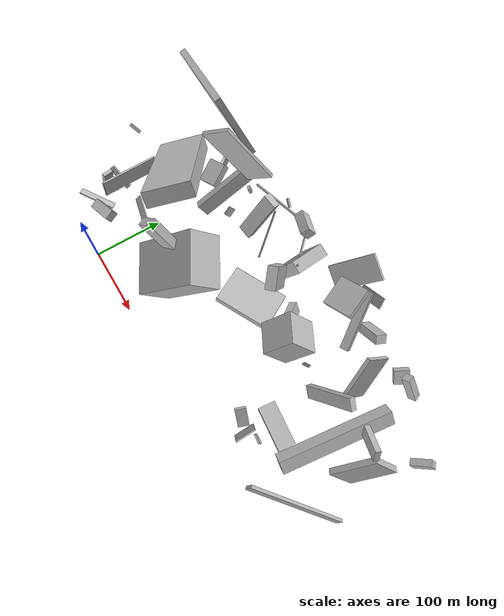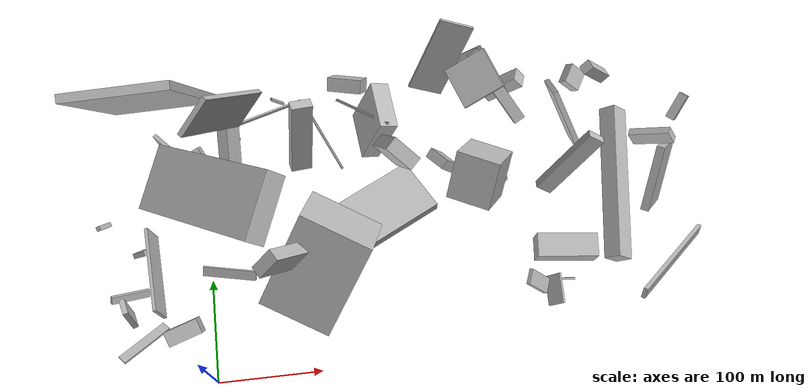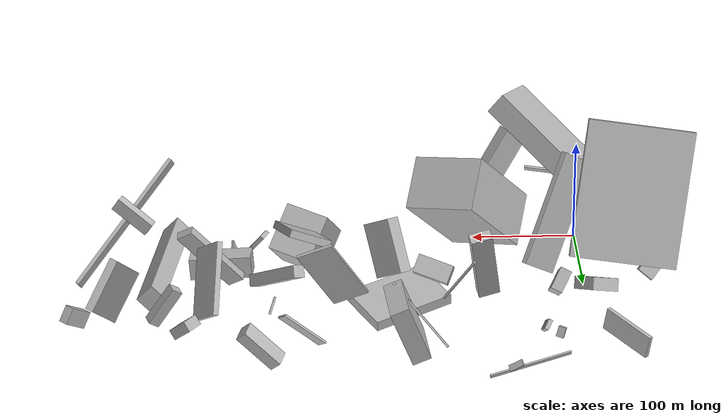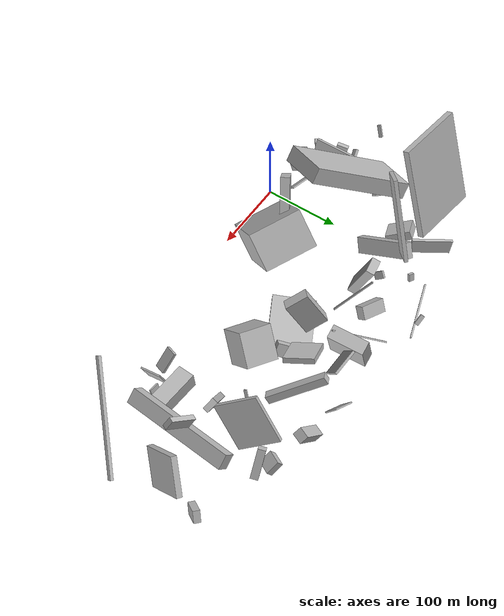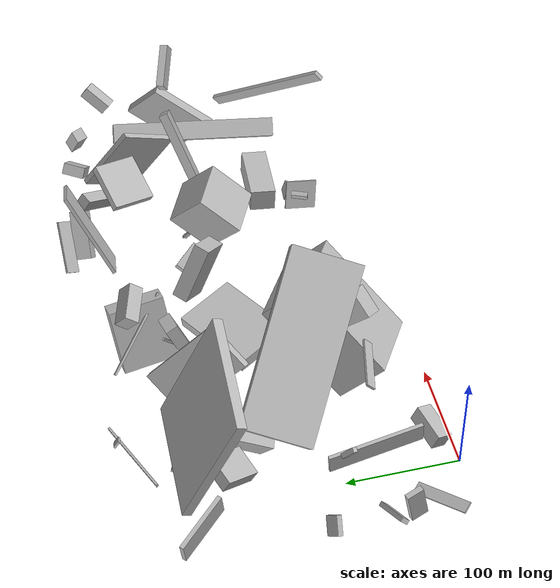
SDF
<sdf version="1.6">
 <world name="default">
  <model name="building_5">
   <static>0</static>
   <pose>259.8265772839246 136.18039277845585 65.21901094160211 -0.8435387554928075 -0.130022142296691 -0.49844811758653107</pose>
   <link name="link">
    <gravity>0</gravity>
    <pose>0 0 23.0 0 0 0</pose>
    <collision name="collision"><geometry><box><size>42 45 46</size></box></geometry></collision>
    <visual name="visual">
     <cast_shadows>0</cast_shadows>
     <geometry><box><size>42 45 46</size></box></geometry>
     <material>
      <script>
       <uri>model://HANNAS_wall/materials/scripts</uri>
       <uri>model://HANNAS_wall/materials/textures</uri>
       <name>vrc/HANNAS_wall</name>
      </script>
     </material>
    </visual>
   </link>
  </model>
  <model name="building_8">
   <static>0</static>
   <pose>-24.671104815876546 168.8037865548153 112.598745769431 -0.40024070331928707 -0.9076764787996814 3.0488779002053503</pose>
   <link name="link">
    <gravity>0</gravity>
    <pose>0 0 75.0 0 0 0</pose>
    <collision name="collision"><geometry><box><size>21 60 150</size></box></geometry></collision>
    <visual name="visual">
     <cast_shadows>0</cast_shadows>
     <geometry><box><size>21 60 150</size></box></geometry>
     <material>
      <script>
       <uri>model://HANNAS_wall/materials/scripts</uri>
       <uri>model://HANNAS_wall/materials/textures</uri>
       <name>vrc/HANNAS_wall</name>
      </script>
     </material>
    </visual>
   </link>
  </model>
  <model name="building_9">
   <static>0</static>
   <pose>315.7861509159072 64.16977273692879 26.55373217312129 1.6276685559124557 -0.6822475865184237 -0.3886593711019929</pose>
   <link name="link">
    <gravity>0</gravity>
    <pose>0 0 7.5 0 0 0</pose>
    <collision name="collision"><geometry><box><size>4 30 15</size></box></geometry></collision>
    <visual name="visual">
     <cast_shadows>0</cast_shadows>
     <geometry><box><size>4 30 15</size></box></geometry>
     <material>
      <script>
       <uri>model://HANNAS_wall/materials/scripts</uri>
       <uri>model://HANNAS_wall/materials/textures</uri>
       <name>vrc/HANNAS_wall</name>
      </script>
     </material>
    </visual>
   </link>
  </model>
  <model name="building_10">
   <static>0</static>
   <pose>404.0656391596722 138.41950995390994 56.17310166811036 2.3409653656611447 0.04115269009356847 -1.7043729712216127</pose>
   <link name="link">
    <gravity>0</gravity>
    <pose>0 0 8.5 0 0 0</pose>
    <collision name="collision"><geometry><box><size>150 20 17</size></box></geometry></collision>
    <visual name="visual">
     <cast_shadows>0</cast_shadows>
     <geometry><box><size>150 20 17</size></box></geometry>
     <material>
      <script>
       <uri>model://HANNAS_wall/materials/scripts</uri>
       <uri>model://HANNAS_wall/materials/textures</uri>
       <name>vrc/HANNAS_wall</name>
      </script>
     </material>
    </visual>
   </link>
  </model>
  <model name="building_14">
   <static>0</static>
   <pose>353.599893192381 208.41458475860313 67.29894039338285 1.1338180194158691 0.9471231890826424 1.4537984579572245</pose>
   <link name="link">
    <gravity>0</gravity>
    <pose>0 0 2.5 0 0 0</pose>
    <collision name="collision"><geometry><box><size>67 60 5</size></box></geometry></collision>
    <visual name="visual">
     <cast_shadows>0</cast_shadows>
     <geometry><box><size>67 60 5</size></box></geometry>
     <material>
      <script>
       <uri>model://HANNAS_wall/materials/scripts</uri>
       <uri>model://HANNAS_wall/materials/textures</uri>
       <name>vrc/HANNAS_wall</name>
      </script>
     </material>
    </visual>
   </link>
  </model>
  <model name="building_18">
   <static>0</static>
   <pose>-67.32473522983105 119.94655683688387 134.27937623558643 1.1658123850975433 0.48324393328405796 -3.0058206199789117</pose>
   <link name="link">
    <gravity>0</gravity>
    <pose>0 0 2.0 0 0 0</pose>
    <collision name="collision"><geometry><box><size>4 16 4</size></box></geometry></collision>
    <visual name="visual">
     <cast_shadows>0</cast_shadows>
     <geometry><box><size>4 16 4</size></box></geometry>
     <material>
      <script>
       <uri>model://HANNAS_wall/materials/scripts</uri>
       <uri>model://HANNAS_wall/materials/textures</uri>
       <name>vrc/HANNAS_wall</name>
      </script>
     </material>
    </visual>
   </link>
  </model>
  <model name="building_20">
   <static>0</static>
   <pose>-68.99555771371666 84.11914693253327 48.299000190683174 2.517605937020053 -0.6573102558144599 -0.9024693221415339</pose>
   <link name="link">
    <gravity>0</gravity>
    <pose>0 0 3.5 0 0 0</pose>
    <collision name="collision"><geometry><box><size>4 36 7</size></box></geometry></collision>
    <visual name="visual">
     <cast_shadows>0</cast_shadows>
     <geometry><box><size>4 36 7</size></box></geometry>
     <material>
      <script>
       <uri>model://HANNAS_wall/materials/scripts</uri>
       <uri>model://HANNAS_wall/materials/textures</uri>
       <name>vrc/HANNAS_wall</name>
      </script>
     </material>
    </visual>
   </link>
  </model>
  <model name="building_22">
   <static>0</static>
   <pose>116.95735619751858 99.41735113503077 63.700631788081154 0.2713236385207076 -0.7341685506470292 0.8616519258812447</pose>
   <link name="link">
    <gravity>0</gravity>
    <pose>0 0 25.5 0 0 0</pose>
    <collision name="collision"><geometry><box><size>100 70 51</size></box></geometry></collision>
    <visual name="visual">
     <cast_shadows>0</cast_shadows>
     <geometry><box><size>100 70 51</size></box></geometry>
     <material>
      <script>
       <uri>model://HANNAS_wall/materials/scripts</uri>
       <uri>model://HANNAS_wall/materials/textures</uri>
       <name>vrc/HANNAS_wall</name>
      </script>
     </material>
    </visual>
   </link>
  </model>
  <model name="building_23">
   <static>0</static>
   <pose>455.1974253881169 175.73274861418784 48.24135320806081 2.2367853946792136 -0.22339168322387978 -0.5052670543309824</pose>
   <link name="link">
    <gravity>0</gravity>
    <pose>0 0 32.5 0 0 0</pose>
    <collision name="collision"><geometry><box><size>8 52 65</size></box></geometry></collision>
    <visual name="visual">
     <cast_shadows>0</cast_shadows>
     <geometry><box><size>8 52 65</size></box></geometry>
     <material>
      <script>
       <uri>model://HANNAS_wall/materials/scripts</uri>
       <uri>model://HANNAS_wall/materials/textures</uri>
       <name>vrc/HANNAS_wall</name>
      </script>
     </material>
    </visual>
   </link>
  </model>
  <model name="building_25">
   <static>0</static>
   <pose>-26.44709302778567 231.02343396573798 18.91426064126442 -1.6747991773039566 -1.3885876713651684 2.395103224386403</pose>
   <link name="link">
    <gravity>0</gravity>
    <pose>0 0 2.0 0 0 0</pose>
    <collision name="collision"><geometry><box><size>22 54 4</size></box></geometry></collision>
    <visual name="visual">
     <cast_shadows>0</cast_shadows>
     <geometry><box><size>22 54 4</size></box></geometry>
     <material>
      <script>
       <uri>model://HANNAS_wall/materials/scripts</uri>
       <uri>model://HANNAS_wall/materials/textures</uri>
       <name>vrc/HANNAS_wall</name>
      </script>
     </material>
    </visual>
   </link>
  </model>
  <model name="building_26">
   <static>0</static>
   <pose>172.41593671554483 260.450695400996 34.83795921196619 -1.4675499427135053 -0.3727394063483826 -3.0792940285727277</pose>
   <link name="link">
    <gravity>0</gravity>
    <pose>0 0 24.5 0 0 0</pose>
    <collision name="collision"><geometry><box><size>18 60 49</size></box></geometry></collision>
    <visual name="visual">
     <cast_shadows>0</cast_shadows>
     <geometry><box><size>18 60 49</size></box></geometry>
     <material>
      <script>
       <uri>model://HANNAS_wall/materials/scripts</uri>
       <uri>model://HANNAS_wall/materials/textures</uri>
       <name>vrc/HANNAS_wall</name>
      </script>
     </material>
    </visual>
   </link>
  </model>
  <model name="building_27">
   <static>0</static>
   <pose>405.71891456883856 252.4681915012718 50.674167031913434 0.6023296795043787 -0.13139452085682027 -1.2203713983650397</pose>
   <link name="link">
    <gravity>0</gravity>
    <pose>0 0 19.5 0 0 0</pose>
    <collision name="collision"><geometry><box><size>10 11 39</size></box></geometry></collision>
    <visual name="visual">
     <cast_shadows>0</cast_shadows>
     <geometry><box><size>10 11 39</size></box></geometry>
     <material>
      <script>
       <uri>model://HANNAS_wall/materials/scripts</uri>
       <uri>model://HANNAS_wall/materials/textures</uri>
       <name>vrc/HANNAS_wall</name>
      </script>
     </material>
    </visual>
   </link>
  </model>
  <model name="building_28">
   <static>0</static>
   <pose>-18.058644450155896 247.0223151602282 100.90016211486567 0.14491987782978719 0.3276024593078588 -1.5717370460777633</pose>
   <link name="link">
    <gravity>0</gravity>
    <pose>0 0 62.5 0 0 0</pose>
    <collision name="collision"><geometry><box><size>8 97 125</size></box></geometry></collision>
    <visual name="visual">
     <cast_shadows>0</cast_shadows>
     <geometry><box><size>8 97 125</size></box></geometry>
     <material>
      <script>
       <uri>model://HANNAS_wall/materials/scripts</uri>
       <uri>model://HANNAS_wall/materials/textures</uri>
       <name>vrc/HANNAS_wall</name>
      </script>
     </material>
    </visual>
   </link>
  </model>
  <model name="building_29">
   <static>0</static>
   <pose>439.214798547877 56.34418257617017 52.33463434852244 -1.9426560678369083 -0.85307583037301 1.1979454027427934</pose>
   <link name="link">
    <gravity>0</gravity>
    <pose>0 0 2.0 0 0 0</pose>
    <collision name="collision"><geometry><box><size>10 150 4</size></box></geometry></collision>
    <visual name="visual">
     <cast_shadows>0</cast_shadows>
     <geometry><box><size>10 150 4</size></box></geometry>
     <material>
      <script>
       <uri>model://HANNAS_wall/materials/scripts</uri>
       <uri>model://HANNAS_wall/materials/textures</uri>
       <name>vrc/HANNAS_wall</name>
      </script>
     </material>
    </visual>
   </link>
  </model>
  <model name="building_30">
   <static>0</static>
   <pose>33.125339482962644 236.01469068936441 24.709355295993294 1.234173822818634 0.17021399970547882 2.716222953514647</pose>
   <link name="link">
    <gravity>0</gravity>
    <pose>0 0 2.0 0 0 0</pose>
    <collision name="collision"><geometry><box><size>7 10 4</size></box></geometry></collision>
    <visual name="visual">
     <cast_shadows>0</cast_shadows>
     <geometry><box><size>7 10 4</size></box></geometry>
     <material>
      <script>
       <uri>model://HANNAS_wall/materials/scripts</uri>
       <uri>model://HANNAS_wall/materials/textures</uri>
       <name>vrc/HANNAS_wall</name>
      </script>
     </material>
    </visual>
   </link>
  </model>
  <model name="building_34">
   <static>0</static>
   <pose>30.113939426649743 160.17592788080975 34.01010297377776 -0.6259011951451309 0.897411094690243 0.7617027851088123</pose>
   <link name="link">
    <gravity>0</gravity>
    <pose>0 0 42.0 0 0 0</pose>
    <collision name="collision"><geometry><box><size>21 11 84</size></box></geometry></collision>
    <visual name="visual">
     <cast_shadows>0</cast_shadows>
     <geometry><box><size>21 11 84</size></box></geometry>
     <material>
      <script>
       <uri>model://HANNAS_wall/materials/scripts</uri>
       <uri>model://HANNAS_wall/materials/textures</uri>
       <name>vrc/HANNAS_wall</name>
      </script>
     </material>
    </visual>
   </link>
  </model>
  <model name="building_36">
   <static>0</static>
   <pose>-8.23901518773713 212.05938729807622 59.95558579042215 2.5354645837830785 1.0858893395050742 1.3951670588340475</pose>
   <link name="link">
    <gravity>0</gravity>
    <pose>0 0 16.5 0 0 0</pose>
    <collision name="collision"><geometry><box><size>12 27 33</size></box></geometry></collision>
    <visual name="visual">
     <cast_shadows>0</cast_shadows>
     <geometry><box><size>12 27 33</size></box></geometry>
     <material>
      <script>
       <uri>model://HANNAS_wall/materials/scripts</uri>
       <uri>model://HANNAS_wall/materials/textures</uri>
       <name>vrc/HANNAS_wall</name>
      </script>
     </material>
    </visual>
   </link>
  </model>
  <model name="building_37">
   <static>0</static>
   <pose>40.67852092870809 214.82425652306057 136.65700024124584 1.4313130085649435 -0.9915295275885745 -2.276167597939722</pose>
   <link name="link">
    <gravity>0</gravity>
    <pose>0 0 2.5 0 0 0</pose>
    <collision name="collision"><geometry><box><size>106 41 5</size></box></geometry></collision>
    <visual name="visual">
     <cast_shadows>0</cast_shadows>
     <geometry><box><size>106 41 5</size></box></geometry>
     <material>
      <script>
       <uri>model://HANNAS_wall/materials/scripts</uri>
       <uri>model://HANNAS_wall/materials/textures</uri>
       <name>vrc/HANNAS_wall</name>
      </script>
     </material>
    </visual>
   </link>
  </model>
  <model name="building_38">
   <static>0</static>
   <pose>276.45898653312656 211.56642967406205 121.06756624009581 1.0933762558767985 -1.0721000442584419 -2.3262256813831423</pose>
   <link name="link">
    <gravity>0</gravity>
    <pose>0 0 19.5 0 0 0</pose>
    <collision name="collision"><geometry><box><size>7 41 39</size></box></geometry></collision>
    <visual name="visual">
     <cast_shadows>0</cast_shadows>
     <geometry><box><size>7 41 39</size></box></geometry>
     <material>
      <script>
       <uri>model://HANNAS_wall/materials/scripts</uri>
       <uri>model://HANNAS_wall/materials/textures</uri>
       <name>vrc/HANNAS_wall</name>
      </script>
     </material>
    </visual>
   </link>
  </model>
  <model name="building_39">
   <static>0</static>
   <pose>185.22963882521913 193.0227984914694 63.58358305157951 0.5033088180004927 -0.17885935725991645 0.7787366275463882</pose>
   <link name="link">
    <gravity>0</gravity>
    <pose>0 0 25.5 0 0 0</pose>
    <collision name="collision"><geometry><box><size>14 31 51</size></box></geometry></collision>
    <visual name="visual">
     <cast_shadows>0</cast_shadows>
     <geometry><box><size>14 31 51</size></box></geometry>
     <material>
      <script>
       <uri>model://HANNAS_wall/materials/scripts</uri>
       <uri>model://HANNAS_wall/materials/textures</uri>
       <name>vrc/HANNAS_wall</name>
      </script>
     </material>
    </visual>
   </link>
  </model>
  <model name="building_41">
   <static>0</static>
   <pose>330.72764801758404 147.32644509251674 36.859395650642426 -0.5855596241516716 -0.4099957793763363 -1.6529152515737646</pose>
   <link name="link">
    <gravity>0</gravity>
    <pose>0 0 40.0 0 0 0</pose>
    <collision name="collision"><geometry><box><size>8 17 80</size></box></geometry></collision>
    <visual name="visual">
     <cast_shadows>0</cast_shadows>
     <geometry><box><size>8 17 80</size></box></geometry>
     <material>
      <script>
       <uri>model://HANNAS_wall/materials/scripts</uri>
       <uri>model://HANNAS_wall/materials/textures</uri>
       <name>vrc/HANNAS_wall</name>
      </script>
     </material>
    </visual>
   </link>
  </model>
  <model name="building_42">
   <static>0</static>
   <pose>0.3522867965609122 39.898022512341356 78.66892275584422 -2.0247135191564523 1.2015276874354925 1.422353824012171</pose>
   <link name="link">
    <gravity>0</gravity>
    <pose>0 0 16.0 0 0 0</pose>
    <collision name="collision"><geometry><box><size>14 14 32</size></box></geometry></collision>
    <visual name="visual">
     <cast_shadows>0</cast_shadows>
     <geometry><box><size>14 14 32</size></box></geometry>
     <material>
      <script>
       <uri>model://HANNAS_wall/materials/scripts</uri>
       <uri>model://HANNAS_wall/materials/textures</uri>
       <name>vrc/HANNAS_wall</name>
      </script>
     </material>
    </visual>
   </link>
  </model>
  <model name="building_45">
   <static>0</static>
   <pose>-72.07962051077264 62.65313379776211 53.32936765545914 -1.6707094479104714 1.3782958284863522 -1.3905988000586043</pose>
   <link name="link">
    <gravity>0</gravity>
    <pose>0 0 2.5 0 0 0</pose>
    <collision name="collision"><geometry><box><size>33 15 5</size></box></geometry></collision>
    <visual name="visual">
     <cast_shadows>0</cast_shadows>
     <geometry><box><size>33 15 5</size></box></geometry>
     <material>
      <script>
       <uri>model://HANNAS_wall/materials/scripts</uri>
       <uri>model://HANNAS_wall/materials/textures</uri>
       <name>vrc/HANNAS_wall</name>
      </script>
     </material>
    </visual>
   </link>
  </model>
  <model name="building_46">
   <static>0</static>
   <pose>312.9490793350635 208.05565828633434 67.73754328061705 -0.4500431651232808 0.9936526777130047 1.6603320124774288</pose>
   <link name="link">
    <gravity>0</gravity>
    <pose>0 0 40.0 0 0 0</pose>
    <collision name="collision"><geometry><box><size>11 11 80</size></box></geometry></collision>
    <visual name="visual">
     <cast_shadows>0</cast_shadows>
     <geometry><box><size>11 11 80</size></box></geometry>
     <material>
      <script>
       <uri>model://HANNAS_wall/materials/scripts</uri>
       <uri>model://HANNAS_wall/materials/textures</uri>
       <name>vrc/HANNAS_wall</name>
      </script>
     </material>
    </visual>
   </link>
  </model>
  <model name="building_48">
   <static>0</static>
   <pose>228.32898727576742 189.33376944044923 48.23564892838597 1.078743520182511 -0.45188043327737365 0.8431286089119341</pose>
   <link name="link">
    <gravity>0</gravity>
    <pose>0 0 12.5 0 0 0</pose>
    <collision name="collision"><geometry><box><size>10 17 25</size></box></geometry></collision>
    <visual name="visual">
     <cast_shadows>0</cast_shadows>
     <geometry><box><size>10 17 25</size></box></geometry>
     <material>
      <script>
       <uri>model://HANNAS_wall/materials/scripts</uri>
       <uri>model://HANNAS_wall/materials/textures</uri>
       <name>vrc/HANNAS_wall</name>
      </script>
     </material>
    </visual>
   </link>
  </model>
  <model name="building_50">
   <static>0</static>
   <pose>77.05789609850945 280.9892639236443 12.50683113578674 -0.7152876950618089 0.5813064750583842 -2.216423705536761</pose>
   <link name="link">
    <gravity>0</gravity>
    <pose>0 0 3.0 0 0 0</pose>
    <collision name="collision"><geometry><box><size>2 14 6</size></box></geometry></collision>
    <visual name="visual">
     <cast_shadows>0</cast_shadows>
     <geometry><box><size>2 14 6</size></box></geometry>
     <material>
      <script>
       <uri>model://HANNAS_wall/materials/scripts</uri>
       <uri>model://HANNAS_wall/materials/textures</uri>
       <name>vrc/HANNAS_wall</name>
      </script>
     </material>
    </visual>
   </link>
  </model>
  <model name="building_51">
   <static>0</static>
   <pose>346.5327162620264 88.36533844598358 32.636379738166404 -3.0580033988486446 -0.04767406433116275 1.4765519409332006</pose>
   <link name="link">
    <gravity>0</gravity>
    <pose>0 0 10.5 0 0 0</pose>
    <collision name="collision"><geometry><box><size>23 59 21</size></box></geometry></collision>
    <visual name="visual">
     <cast_shadows>0</cast_shadows>
     <geometry><box><size>23 59 21</size></box></geometry>
     <material>
      <script>
       <uri>model://HANNAS_wall/materials/scripts</uri>
       <uri>model://HANNAS_wall/materials/textures</uri>
       <name>vrc/HANNAS_wall</name>
      </script>
     </material>
    </visual>
   </link>
  </model>
  <model name="building_56">
   <static>0</static>
   <pose>139.04373851715442 267.30722392168946 28.269863653779478 -0.8922750052710228 -0.628247388502025 -2.8120308985532168</pose>
   <link name="link">
    <gravity>0</gravity>
    <pose>0 0 40.0 0 0 0</pose>
    <collision name="collision"><geometry><box><size>2 2 80</size></box></geometry></collision>
    <visual name="visual">
     <cast_shadows>0</cast_shadows>
     <geometry><box><size>2 2 80</size></box></geometry>
     <material>
      <script>
       <uri>model://HANNAS_wall/materials/scripts</uri>
       <uri>model://HANNAS_wall/materials/textures</uri>
       <name>vrc/HANNAS_wall</name>
      </script>
     </material>
    </visual>
   </link>
  </model>
  <model name="building_59">
   <static>0</static>
   <pose>41.84041157245332 202.625394730474 13.64007418985144 2.2680797280551466 -0.48981871281054784 -0.13076703947638424</pose>
   <link name="link">
    <gravity>0</gravity>
    <pose>0 0 6.5 0 0 0</pose>
    <collision name="collision"><geometry><box><size>4 10 13</size></box></geometry></collision>
    <visual name="visual">
     <cast_shadows>0</cast_shadows>
     <geometry><box><size>4 10 13</size></box></geometry>
     <material>
      <script>
       <uri>model://HANNAS_wall/materials/scripts</uri>
       <uri>model://HANNAS_wall/materials/textures</uri>
       <name>vrc/HANNAS_wall</name>
      </script>
     </material>
    </visual>
   </link>
  </model>
  <model name="building_61">
   <static>0</static>
   <pose>138.11982598355758 189.55541935393052 36.75943444170122 -0.6802224518729124 -0.015388116265960136 0.548188424466085</pose>
   <link name="link">
    <gravity>0</gravity>
    <pose>0 0 36.5 0 0 0</pose>
    <collision name="collision"><geometry><box><size>2 2 73</size></box></geometry></collision>
    <visual name="visual">
     <cast_shadows>0</cast_shadows>
     <geometry><box><size>2 2 73</size></box></geometry>
     <material>
      <script>
       <uri>model://HANNAS_wall/materials/scripts</uri>
       <uri>model://HANNAS_wall/materials/textures</uri>
       <name>vrc/HANNAS_wall</name>
      </script>
     </material>
    </visual>
   </link>
  </model>
  <model name="building_63">
   <static>0</static>
   <pose>427.1234959067247 157.18387282434455 105.62798983553478 -0.17067846108523585 -0.6006555559072744 -0.3541030387325677</pose>
   <link name="link">
    <gravity>0</gravity>
    <pose>0 0 7.5 0 0 0</pose>
    <collision name="collision"><geometry><box><size>39 7 15</size></box></geometry></collision>
    <visual name="visual">
     <cast_shadows>0</cast_shadows>
     <geometry><box><size>39 7 15</size></box></geometry>
     <material>
      <script>
       <uri>model://HANNAS_wall/materials/scripts</uri>
       <uri>model://HANNAS_wall/materials/textures</uri>
       <name>vrc/HANNAS_wall</name>
      </script>
     </material>
    </visual>
   </link>
  </model>
  <model name="building_64">
   <static>0</static>
   <pose>288.59897849033734 282.1273789672072 71.15542136982043 -2.4363884146148616 0.6156650295192168 0.9759800303164702</pose>
   <link name="link">
    <gravity>0</gravity>
    <pose>0 0 23.0 0 0 0</pose>
    <collision name="collision"><geometry><box><size>2 15 46</size></box></geometry></collision>
    <visual name="visual">
     <cast_shadows>0</cast_shadows>
     <geometry><box><size>2 15 46</size></box></geometry>
     <material>
      <script>
       <uri>model://HANNAS_wall/materials/scripts</uri>
       <uri>model://HANNAS_wall/materials/textures</uri>
       <name>vrc/HANNAS_wall</name>
      </script>
     </material>
    </visual>
   </link>
  </model>
  <model name="building_65">
   <static>0</static>
   <pose>-33.32724622141387 87.49450703154187 79.4036210914749 -0.17978495184917198 0.11451137137521634 1.6638643594673401</pose>
   <link name="link">
    <gravity>0</gravity>
    <pose>0 0 11.5 0 0 0</pose>
    <collision name="collision"><geometry><box><size>80 3 23</size></box></geometry></collision>
    <visual name="visual">
     <cast_shadows>0</cast_shadows>
     <geometry><box><size>80 3 23</size></box></geometry>
     <material>
      <script>
       <uri>model://HANNAS_wall/materials/scripts</uri>
       <uri>model://HANNAS_wall/materials/textures</uri>
       <name>vrc/HANNAS_wall</name>
      </script>
     </material>
    </visual>
   </link>
  </model>
  <model name="building_66">
   <static>0</static>
   <pose>89.07462653449085 75.08526988690215 119.71597235464279 1.5314538089049219 -0.9157950481073189 -2.5868623473081485</pose>
   <link name="link">
    <gravity>0</gravity>
    <pose>0 0 6.0 0 0 0</pose>
    <collision name="collision"><geometry><box><size>68 25 12</size></box></geometry></collision>
    <visual name="visual">
     <cast_shadows>0</cast_shadows>
     <geometry><box><size>68 25 12</size></box></geometry>
     <material>
      <script>
       <uri>model://HANNAS_wall/materials/scripts</uri>
       <uri>model://HANNAS_wall/materials/textures</uri>
       <name>vrc/HANNAS_wall</name>
      </script>
     </material>
    </visual>
   </link>
  </model>
  <model name="building_68">
   <static>0</static>
   <pose>297.3701104078397 168.26146677829212 19.454664699325782 2.0777815772085266 -0.31214475976057615 -0.10285062420686546</pose>
   <link name="link">
    <gravity>0</gravity>
    <pose>0 0 2.0 0 0 0</pose>
    <collision name="collision"><geometry><box><size>2 17 4</size></box></geometry></collision>
    <visual name="visual">
     <cast_shadows>0</cast_shadows>
     <geometry><box><size>2 17 4</size></box></geometry>
     <material>
      <script>
       <uri>model://HANNAS_wall/materials/scripts</uri>
       <uri>model://HANNAS_wall/materials/textures</uri>
       <name>vrc/HANNAS_wall</name>
      </script>
     </material>
    </visual>
   </link>
  </model>
  <model name="building_69">
   <static>0</static>
   <pose>98.24965179616402 193.35616207061184 45.3665022435599 0.22037812635977727 0.37367278376245877 1.809324514732575</pose>
   <link name="link">
    <gravity>0</gravity>
    <pose>0 0 40.0 0 0 0</pose>
    <collision name="collision"><geometry><box><size>11 20 80</size></box></geometry></collision>
    <visual name="visual">
     <cast_shadows>0</cast_shadows>
     <geometry><box><size>11 20 80</size></box></geometry>
     <material>
      <script>
       <uri>model://HANNAS_wall/materials/scripts</uri>
       <uri>model://HANNAS_wall/materials/textures</uri>
       <name>vrc/HANNAS_wall</name>
      </script>
     </material>
    </visual>
   </link>
  </model>
  <model name="building_70">
   <static>0</static>
   <pose>304.0252078383528 266.21537578526176 34.33014352713374 2.317382185818458 0.2678870135460592 1.232727611798074</pose>
   <link name="link">
    <gravity>0</gravity>
    <pose>0 0 6.5 0 0 0</pose>
    <collision name="collision"><geometry><box><size>15 44 13</size></box></geometry></collision>
    <visual name="visual">
     <cast_shadows>0</cast_shadows>
     <geometry><box><size>15 44 13</size></box></geometry>
     <material>
      <script>
       <uri>model://HANNAS_wall/materials/scripts</uri>
       <uri>model://HANNAS_wall/materials/textures</uri>
       <name>vrc/HANNAS_wall</name>
      </script>
     </material>
    </visual>
   </link>
  </model>
  <model name="building_74">
   <static>0</static>
   <pose>191.98050752478758 127.84291434883284 20.087893738919064 -2.4583922073135582 -1.4242431610026087 1.3816783558308834</pose>
   <link name="link">
    <gravity>0</gravity>
    <pose>0 0 28.0 0 0 0</pose>
    <collision name="collision"><geometry><box><size>10 80 56</size></box></geometry></collision>
    <visual name="visual">
     <cast_shadows>0</cast_shadows>
     <geometry><box><size>10 80 56</size></box></geometry>
     <material>
      <script>
       <uri>model://HANNAS_wall/materials/scripts</uri>
       <uri>model://HANNAS_wall/materials/textures</uri>
       <name>vrc/HANNAS_wall</name>
      </script>
     </material>
    </visual>
   </link>
  </model>
  <model name="building_75">
   <static>0</static>
   <pose>-58.45650547333742 125.19732715651098 29.039383826351443 1.0144789667190264 -0.7039781785067478 -2.5139015680615273</pose>
   <link name="link">
    <gravity>0</gravity>
    <pose>0 0 2.5 0 0 0</pose>
    <collision name="collision"><geometry><box><size>14 17 5</size></box></geometry></collision>
    <visual name="visual">
     <cast_shadows>0</cast_shadows>
     <geometry><box><size>14 17 5</size></box></geometry>
     <material>
      <script>
       <uri>model://HANNAS_wall/materials/scripts</uri>
       <uri>model://HANNAS_wall/materials/textures</uri>
       <name>vrc/HANNAS_wall</name>
      </script>
     </material>
    </visual>
   </link>
  </model>
  <model name="building_76">
   <static>0</static>
   <pose>226.06131299071558 248.42591357771573 71.00726693591723 -0.48915343443049153 0.4083929233582769 -0.1525660993025268</pose>
   <link name="link">
    <gravity>0</gravity>
    <pose>0 0 40.0 0 0 0</pose>
    <collision name="collision"><geometry><box><size>34 3 80</size></box></geometry></collision>
    <visual name="visual">
     <cast_shadows>0</cast_shadows>
     <geometry><box><size>34 3 80</size></box></geometry>
     <material>
      <script>
       <uri>model://HANNAS_wall/materials/scripts</uri>
       <uri>model://HANNAS_wall/materials/textures</uri>
       <name>vrc/HANNAS_wall</name>
      </script>
     </material>
    </visual>
   </link>
  </model>
  <model name="building_78">
   <static>0</static>
   <pose>345.1002347464634 60.341560658605786 8.950747612690474 -3.140706165928791 0.27913437110158834 -1.6640040747514373</pose>
   <link name="link">
    <gravity>0</gravity>
    <pose>0 0 6.0 0 0 0</pose>
    <collision name="collision"><geometry><box><size>2 14 12</size></box></geometry></collision>
    <visual name="visual">
     <cast_shadows>0</cast_shadows>
     <geometry><box><size>2 14 12</size></box></geometry>
     <material>
      <script>
       <uri>model://HANNAS_wall/materials/scripts</uri>
       <uri>model://HANNAS_wall/materials/textures</uri>
       <name>vrc/HANNAS_wall</name>
      </script>
     </material>
    </visual>
   </link>
  </model>
  <model name="building_79">
   <static>0</static>
   <pose>-40.097900382459244 52.94657244833046 32.353536687179776 0.911512892026507 1.1351094648425457 -1.517323474290433</pose>
   <link name="link">
    <gravity>0</gravity>
    <pose>0 0 25.5 0 0 0</pose>
    <collision name="collision"><geometry><box><size>2 10 51</size></box></geometry></collision>
    <visual name="visual">
     <cast_shadows>0</cast_shadows>
     <geometry><box><size>2 10 51</size></box></geometry>
     <material>
      <script>
       <uri>model://HANNAS_wall/materials/scripts</uri>
       <uri>model://HANNAS_wall/materials/textures</uri>
       <name>vrc/HANNAS_wall</name>
      </script>
     </material>
    </visual>
   </link>
  </model>
  <model name="building_82">
   <static>0</static>
   <pose>32.860192144547405 72.01945929013823 106.40650710527137 -0.06099599760687336 0.8025724780640896 1.3053250663137679</pose>
   <link name="link">
    <gravity>0</gravity>
    <pose>0 0 4.5 0 0 0</pose>
    <collision name="collision"><geometry><box><size>2 47 9</size></box></geometry></collision>
    <visual name="visual">
     <cast_shadows>0</cast_shadows>
     <geometry><box><size>2 47 9</size></box></geometry>
     <material>
      <script>
       <uri>model://HANNAS_wall/materials/scripts</uri>
       <uri>model://HANNAS_wall/materials/textures</uri>
       <name>vrc/HANNAS_wall</name>
      </script>
     </material>
    </visual>
   </link>
  </model>
  <model name="building_84">
   <static>0</static>
   <pose>335.8044404098218 49.293777185982414 21.492378730710623 -2.7535021585707518 -0.1534050550828669 1.5715634932525886</pose>
   <link name="link">
    <gravity>0</gravity>
    <pose>0 0 13.5 0 0 0</pose>
    <collision name="collision"><geometry><box><size>29 2 27</size></box></geometry></collision>
    <visual name="visual">
     <cast_shadows>0</cast_shadows>
     <geometry><box><size>29 2 27</size></box></geometry>
     <material>
      <script>
       <uri>model://HANNAS_wall/materials/scripts</uri>
       <uri>model://HANNAS_wall/materials/textures</uri>
       <name>vrc/HANNAS_wall</name>
      </script>
     </material>
    </visual>
   </link>
  </model>
  <model name="building_88">
   <static>0</static>
   <pose>136.83611431024863 254.74684798336614 94.27917600345458 1.2780097560578265 -0.6186373458406913 1.413208024238109</pose>
   <link name="link">
    <gravity>0</gravity>
    <pose>0 0 16.5 0 0 0</pose>
    <collision name="collision"><geometry><box><size>13 17 33</size></box></geometry></collision>
    <visual name="visual">
     <cast_shadows>0</cast_shadows>
     <geometry><box><size>13 17 33</size></box></geometry>
     <material>
      <script>
       <uri>model://HANNAS_wall/materials/scripts</uri>
       <uri>model://HANNAS_wall/materials/textures</uri>
       <name>vrc/HANNAS_wall</name>
      </script>
     </material>
    </visual>
   </link>
  </model>
  <model name="building_92">
   <static>0</static>
   <pose>480.9455326698283 213.77225883263975 38.199862237165874 -1.6576985202643626 -0.5670675989797949 0.8970588669561642</pose>
   <link name="link">
    <gravity>0</gravity>
    <pose>0 0 4.5 0 0 0</pose>
    <collision name="collision"><geometry><box><size>27 16 9</size></box></geometry></collision>
    <visual name="visual">
     <cast_shadows>0</cast_shadows>
     <geometry><box><size>27 16 9</size></box></geometry>
     <material>
      <script>
       <uri>model://HANNAS_wall/materials/scripts</uri>
       <uri>model://HANNAS_wall/materials/textures</uri>
       <name>vrc/HANNAS_wall</name>
      </script>
     </material>
    </visual>
   </link>
  </model>
  <model name="building_94">
   <static>0</static>
   <pose>382.6543696649476 252.71718703752555 40.86431087150359 -0.90042264552722 -0.08891183624531479 1.0545368032531512</pose>
   <link name="link">
    <gravity>0</gravity>
    <pose>0 0 9.5 0 0 0</pose>
    <collision name="collision"><geometry><box><size>20 10 19</size></box></geometry></collision>
    <visual name="visual">
     <cast_shadows>0</cast_shadows>
     <geometry><box><size>20 10 19</size></box></geometry>
     <material>
      <script>
       <uri>model://HANNAS_wall/materials/scripts</uri>
       <uri>model://HANNAS_wall/materials/textures</uri>
       <name>vrc/HANNAS_wall</name>
      </script>
     </material>
    </visual>
   </link>
  </model>
  <model name="building_95">
   <static>0</static>
   <pose>64.1222194767075 267.28468115565727 9.592409767235576 1.7920528460076837 -0.10911211263583773 -2.8087168691206643</pose>
   <link name="link">
    <gravity>0</gravity>
    <pose>0 0 1.0 0 0 0</pose>
    <collision name="collision"><geometry><box><size>80 3 2</size></box></geometry></collision>
    <visual name="visual">
     <cast_shadows>0</cast_shadows>
     <geometry><box><size>80 3 2</size></box></geometry>
     <material>
      <script>
       <uri>model://HANNAS_wall/materials/scripts</uri>
       <uri>model://HANNAS_wall/materials/textures</uri>
       <name>vrc/HANNAS_wall</name>
      </script>
     </material>
    </visual>
   </link>
  </model>
 </world>
</sdf>
